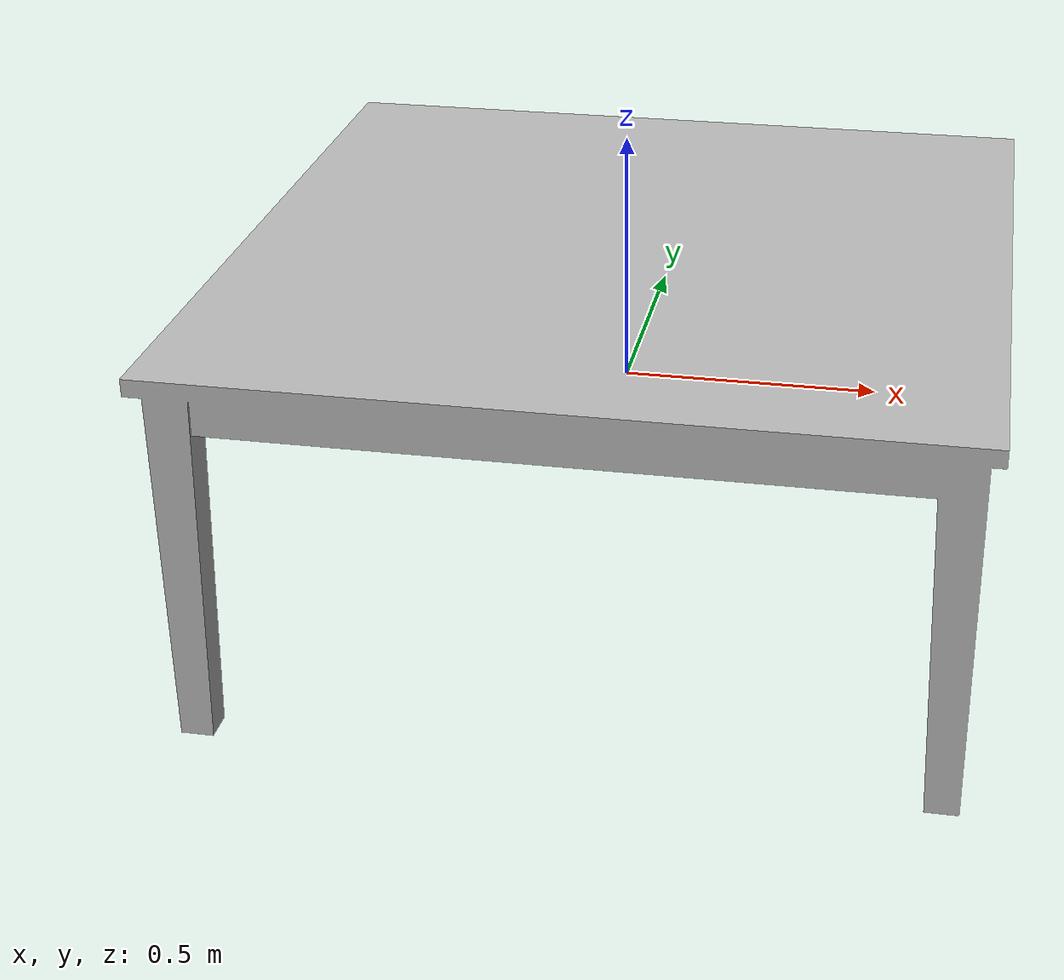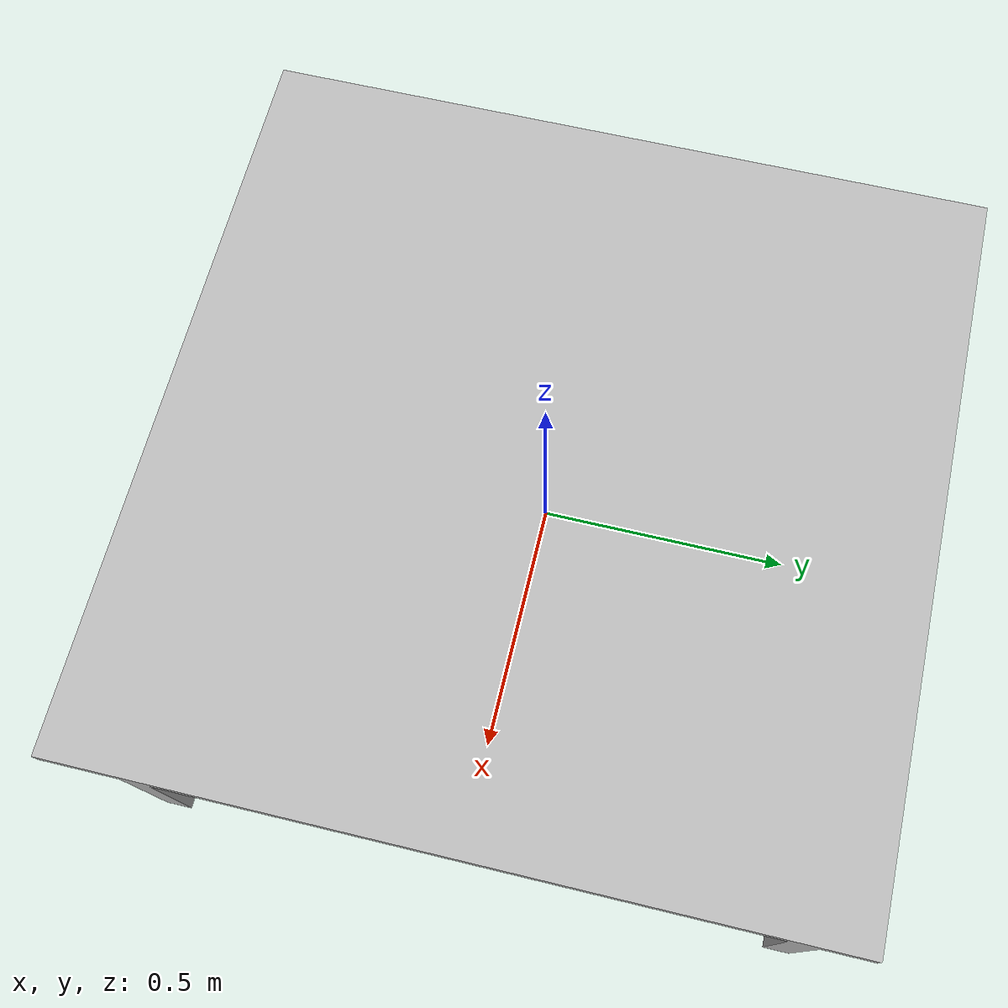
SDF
<?xml version="1.0"?>
<sdf version="1.7">
  <model name="table2">
    <pose>0 0 0 0 0 0</pose>
    <link name="link">
      <inertial>
        <mass>1162.6843052916</mass>
        <inertia>
          <ixx>269.73529536331483</ixx>
          <ixy>0.0</ixy>
          <ixz>0.0</ixz>
          <iyy>269.53290399958183</iyy>
          <iyz>0.0</iyz>
          <izz>431.39721553475454</izz>
        </inertia>
      </inertial>
      <collision name="collision">
        <pose>0.000134 0.0006569999999999999 -0.08900000000000001 0 0 0</pose>
        <geometry>
          <box>
            <size>1.4916999999999998 1.4924000000000002 0.7461</size>
          </box>
        </geometry>
      </collision>
      <visual name="box_visual">
        <geometry>
          <mesh>
            <uri>model.obj</uri>
            <scale>0.01 0.01 0.01</scale>
          </mesh>
        </geometry>
      </visual>
    </link>
  </model>
</sdf>
